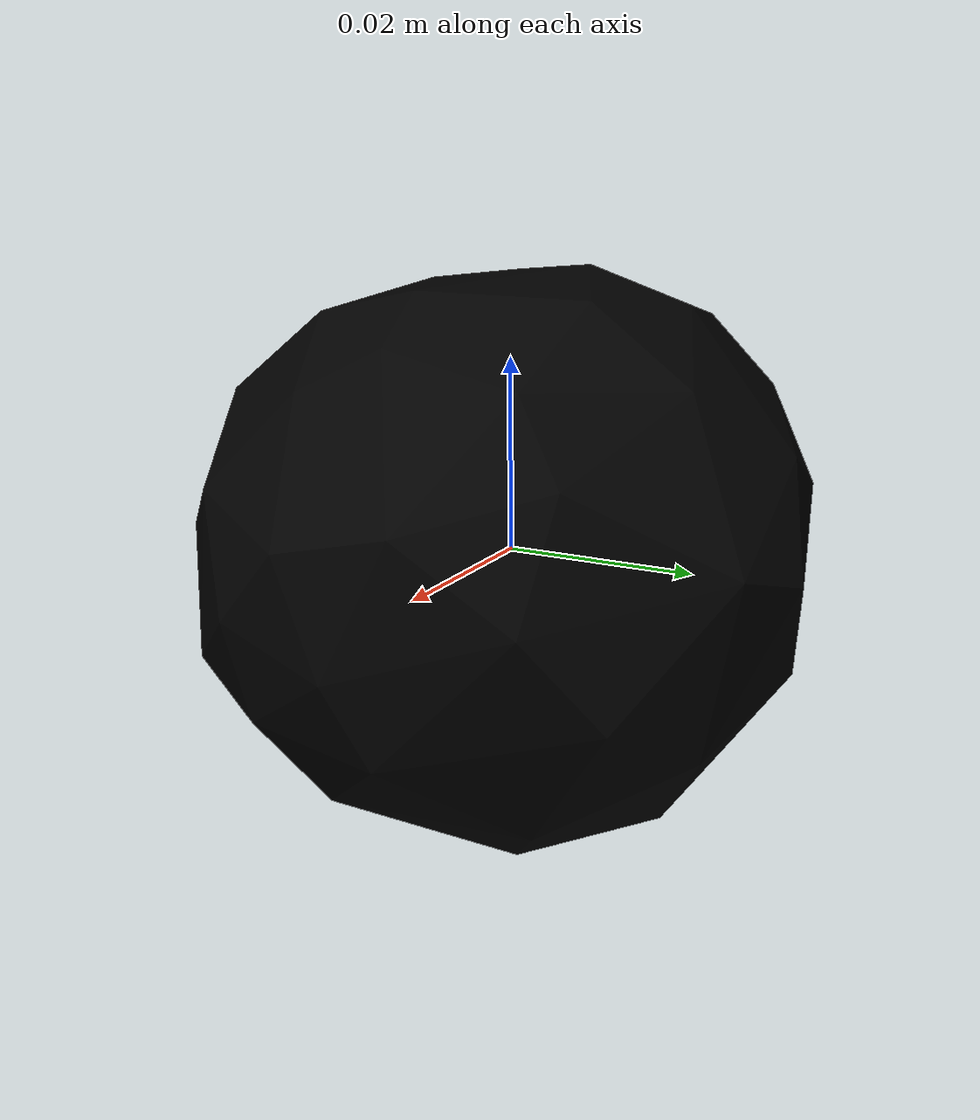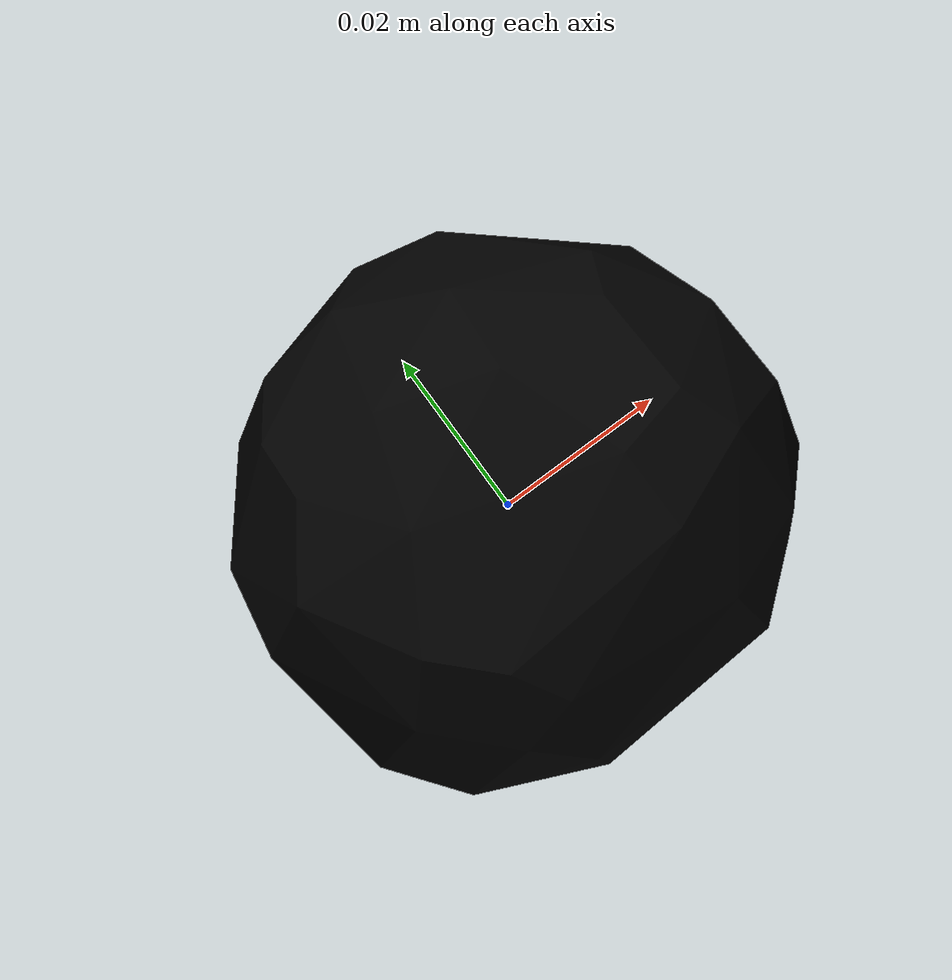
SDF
<?xml version="1.0"?>
<sdf version="1.4">
  <model name="015_peach_textured">
    <pose>0 0 0  0 0 0</pose>
    <link name="body">
      <inertial>
        <mass> 1.0 </mass>
        <pose>0 0 0 0 0 0</pose>
        <inertia>
          <ixx>0.0003496418319544918</ixx>
          <ixy>0.0</ixy>
          <ixz>0.0</ixz>
          <iyy>0.00037914091622152284</iyy>
          <iyz>0.0</iyz>
          <izz>0.0003913928189939855</izz>
        </inertia>
      </inertial>
      <visual name="visual">
        <geometry>
          <mesh>
            <uri>model://015_peach_textured/textured.dae</uri>
          </mesh>
        </geometry>
        <pose>0.0020236457329968574 -0.03130166974185472 -0.009335920776028468 -0.5365480763315279 -0.5730537628685677 -0.8033558616771994</pose>
      </visual>
      <collision name="collision">
        <geometry>
          <mesh>
            <uri>model://015_peach_textured/textured.col.dae</uri>
          </mesh>
        </geometry>
        <max_contacts>10</max_contacts>
        <surface>
          <friction>
            <ode>
              <mu>0.8</mu>
              <mu2>0.8</mu2>
              <slip1>0</slip1>
              <slip2>0</slip2>
            </ode>
            <torsional>
              <ode/>
            </torsional>
          </friction>
          <contact>
            <ode>
              <kp>1000000.0</kp>
              <kd>1.0</kd>
              <max_vel>0.0</max_vel>
            </ode>
          </contact>
        </surface>
        <pose>0.0020236457329968574 -0.03130166974185472 -0.009335920776028468 -0.5365480763315279 -0.5730537628685677 -0.8033558616771994</pose>
      </collision>
    </link>
  </model>
</sdf>
